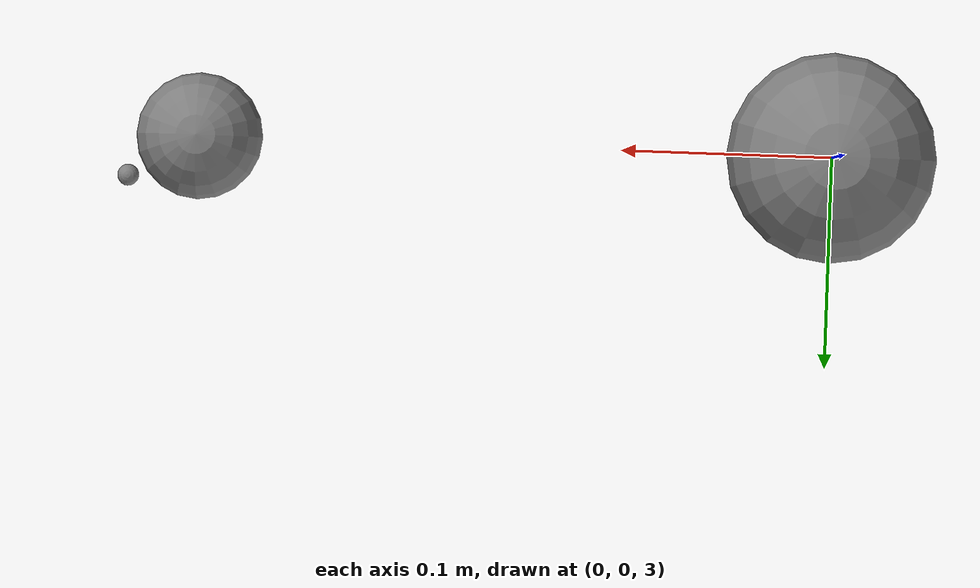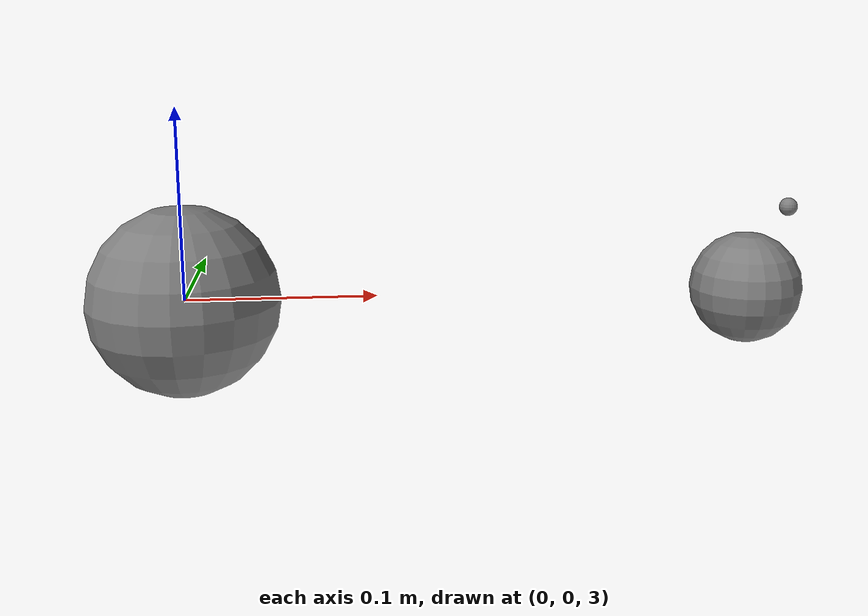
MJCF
<mujoco model="rotated_slider">
  <compiler angle="radian" autolimits="true"/>
  <option timestep="0.0001" gravity="0 0 0"/>
  <default><geom contype="0" conaffinity="0"/></default>
  <worldbody>
    <body name="base" pos="0 0 3">
      <inertial pos="0 0 0" mass="1" diaginertia="0.1 0.1 0.1"/>
      <geom type="sphere" size="0.05"/>
      <body name="arm">
        <joint name="hinge" type="hinge" axis="0 0 1" damping="0"/>
        <inertial pos="0 0 0" mass="1" diaginertia="0.1 0.1 0.1"/>
        <geom type="sphere" size="0.04"/>
        <body name="slider" pos="0.3 0 0" quat="0.7071067811865476 0 0 0.7071067811865476">
          <joint name="slide" type="slide" axis="1 0 0" damping="0"/>
          <inertial pos="0 0 0" mass="2" diaginertia="0.05 0.05 0.05"/>
          <geom type="sphere" size="0.03"/>
          <site name="sensor_site" pos="0.02 -0.03 0.04"/>
        </body>
      </body>
    </body>
  </worldbody>
  <actuator>
    <motor name="hinge_motor" joint="hinge" forcerange="-100 100"/>
    <motor name="slide_motor" joint="slide" forcerange="-100 100"/>
  </actuator>
  <sensor>
    <jointpos name="slide_encoder" joint="slide"/>
    <accelerometer name="slider_imu" site="sensor_site"/>
    <velocimeter name="slider_velocity" site="sensor_site"/>
    <framepos name="slider_pose" objtype="body" objname="slider"/>
    <force name="slider_load" site="sensor_site"/>
  </sensor>
</mujoco>
